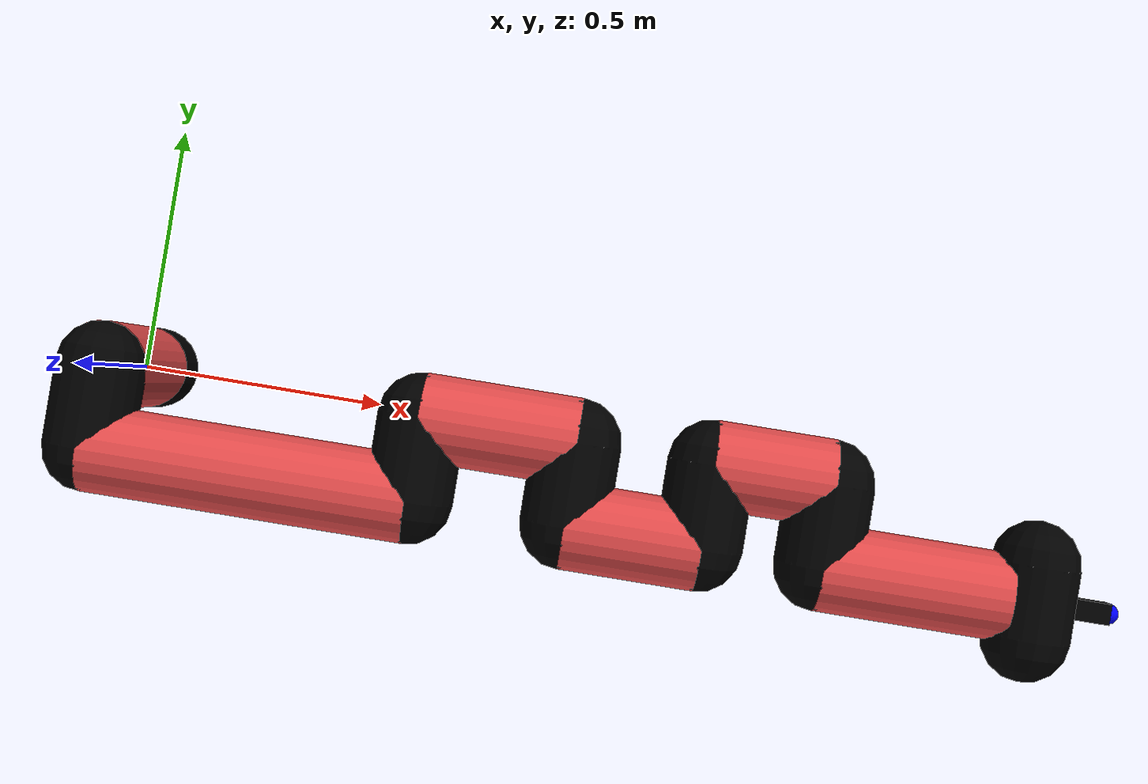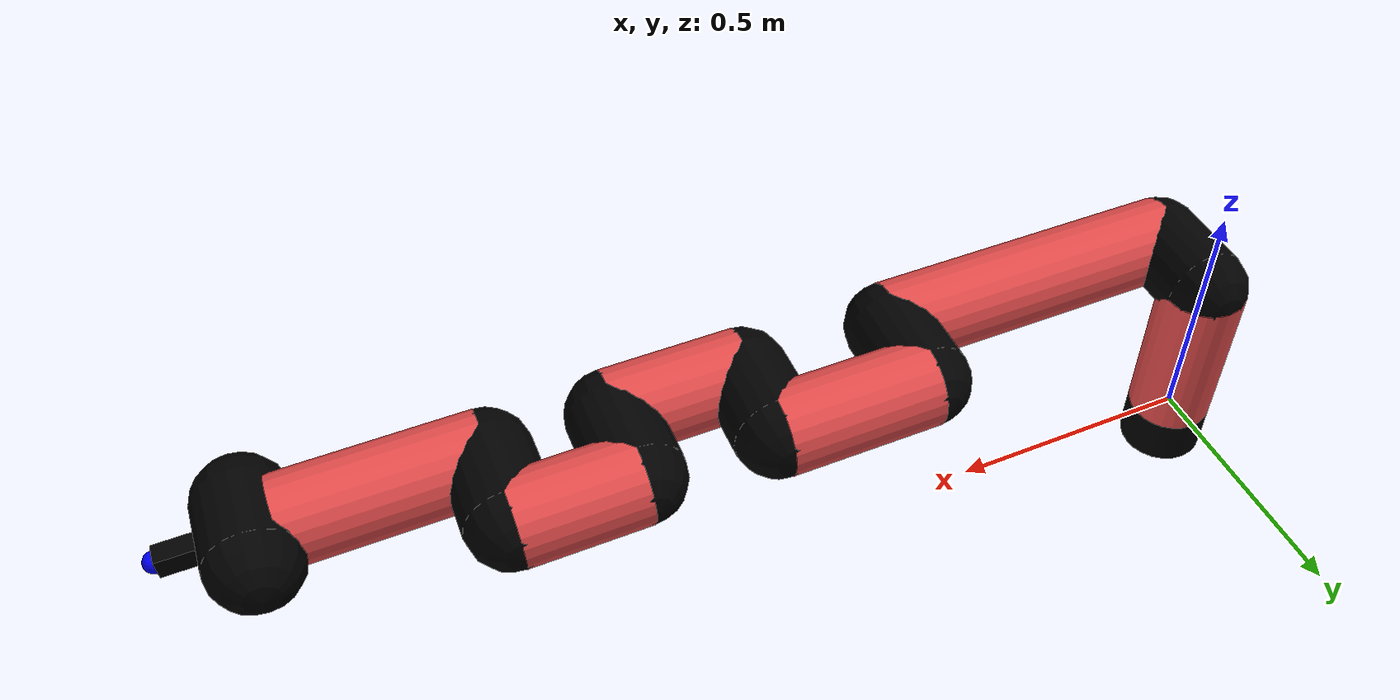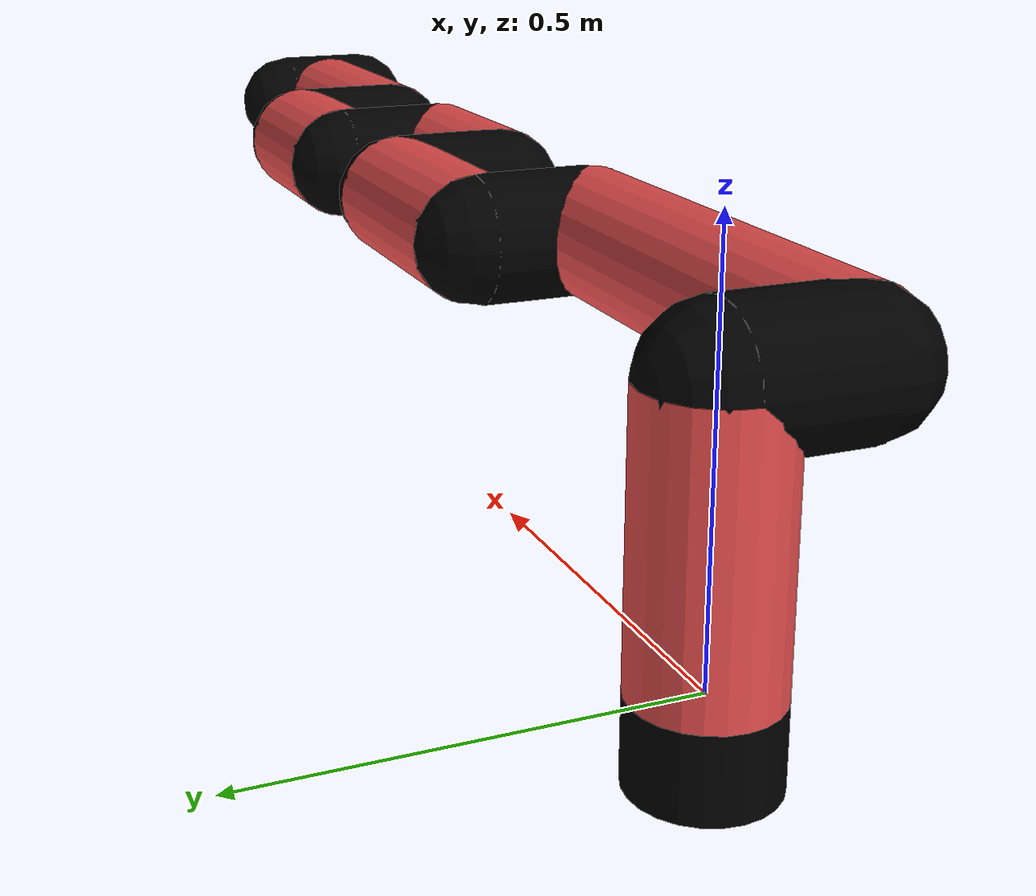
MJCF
<mujoco model="manipulator">
		<compiler angle="degree" coordinate="local" inertiafromgeom="auto" meshdir="meshes/"/>
		<option gravity="0 0 0" integrator="RK4" iterations="30" timestep="0.01"/>

		<default>
		<joint armature="1" limited="true" stiffness="10" damping="15" frictionloss="5.0"/>
		<geom conaffinity="1" condim="3" contype="1" friction=".5 .1 .1" margin="0.002"/>
		<motor ctrllimited="true"/>
		<position ctrllimited="true"/>
		</default>

		<asset>
		<texture builtin="gradient" height="100" rgb1="1.0 1.0 1.0" rgb2="1.0 1.0 1.0" type="skybox" width="100"/>
		<texture builtin="flat" height="32" name="arm_tex" rgb1="0.9 0.3 0.3" type="2d" width="32"/>
		<texture builtin="flat" height="32" name="gripper_tex" rgb1="0.0 0.0 0.0" type="cube" width="32"/>

		<material name="arm_mat" shininess="0.1" specular="0.1" texture="arm_tex"/>
		<material name="gripper_mat" shininess="1" specular="1" texture="gripper_tex"/>
		</asset>

		<worldbody>
		<light cutoff="45" diffuse=".8 .8 .8" dir="0 0.16 -1" directional="false" name="light" pos="0 -2.0 8.0" specular="0.3 0.3 0.3"/>

		<body name="base_link" pos="0 0 -0.1">
		<geom fromto="0 0 0 0 0 0.1" material="arm_mat" name="base_link" rgba="0.0 0.0 0.0 1" size="0.085" type="cylinder"/>
		</body>

		<body name="l1" pos="0 0 0">
<geom fromto="0 0 0 0 0 0.33" material="arm_mat" name="l1" rgba="0.9 0.3 0.3 1" size="0.085" type="cylinder"/>
<geom fromto="0 0 0.33 0 -0.16 0.33" material="arm_mat" name="l1_ex" rgba="0.0 0.0 0.0 1" size="0.085" type="capsule"/>
<joint axis="0 0 1" name="j1" pos="0 0 0" range="-90 90" damping="26.25" frictionloss="12.05"/>

<body name="l2" pos="0 -0.16 0.33">
<geom fromto="0 0 0 0.62 0 0" material="arm_mat" name="l2" rgba="0.9 0.3 0.3 1" size="0.085" type="cylinder"/>
<geom fromto="0.62 0 0 0.62 0.16 0" material="arm_mat" name="l2_ex" rgba="0.0 0.0 0.0 1" size="0.085" type="capsule"/>
<joint axis="0.0 1.0 0.0" name="j2" pos="0 0 0" range="-90 60" damping="28.7" frictionloss="8.85"/>

<body name="l3" pos="0.62 0.16 0">
<geom fromto="0 0 0 0.3 0 0" material="arm_mat" name="l3" rgba="0.9 0.3 0.3 1" size="0.085" type="cylinder"/>
<geom fromto="0.3 0 0 0.3 -0.16 0" material="arm_mat" name="l3_ex" rgba="0.0 0.0 0.0 1" size="0.085" type="capsule"/>
<joint axis="0.0 1.0 0.0" name="j3" pos="0 0 0" range="-30 60" damping="28.29" frictionloss="9.03"/>

<body name="l4" pos="0.3 -0.16 0">
<geom fromto="0 0 0 0.26 0 0" material="arm_mat" name="l4" rgba="0.9 0.3 0.3 1" size="0.085" type="cylinder"/>
<geom fromto="0.26 0 0 0.26 0.16 0" material="arm_mat" name="l4_ex" rgba="0.0 0.0 0.0 1" size="0.085" type="capsule"/>
<joint axis="0.0 1.0 0.0" name="j4" pos="0 0 0" range="-30 60" damping="30.27" frictionloss="9.68"/>

<body name="l5" pos="0.26 0.16 0">
<geom fromto="0 0 0 0.23 0 0" material="arm_mat" name="l5" rgba="0.9 0.3 0.3 1" size="0.085" type="cylinder"/>
<geom fromto="0.23 0 0 0.23 -0.16 0" material="arm_mat" name="l5_ex" rgba="0.0 0.0 0.0 1" size="0.085" type="capsule"/>
<joint axis="0.0 1.0 0.0" name="j5" pos="0 0 0" range="-30 60" damping="24.77" frictionloss="11.41"/>

<body name="l6" pos="0.23 -0.16 0">
<geom fromto="0 0 0 0.36 0 0" material="arm_mat" name="l6" rgba="0.9 0.3 0.3 1" size="0.085" type="cylinder"/>
<joint axis="0.0 1.0 0.0" name="j6" pos="0 0 0" range="-30 60" damping="24.74" frictionloss="12.13"/>

<body name="gripper" pos="0.36 0 0">
<geom fromto="0.05 -0.07 0 0.05 0.07 0" material="gripper_mat" name="gripper" rgba="0.0 0.0 0.0 1" size="0.085" type="capsule"/><joint axis="1 0 0" name="j7" pos="0 0 0" range="-90 90" damping="15" frictionloss="5.0"/><body name="finger" pos="0.1 0 0">
<geom fromto="0 0.0 0 0.1 0.0 0" material="gripper_mat" name="finger" rgba="0.0 0.0 0.0 1" size="0.020 0.06 0.06" type="box"/>
</body>
<site name="current" pos="0.2 0. 0.0" rgba="0. 0. 1.0 1" size="0.02" type="sphere"/>
</body>
</body>
</body>
</body>
</body>
</body>
</body>
</worldbody>
<actuator>
<motor ctrllimited="true" ctrlrange="-1.0 1.0" joint="j1" gear="60.47"/>
<motor ctrllimited="true" ctrlrange="-1.0 1.0" joint="j2" gear="95.32"/>
<motor ctrllimited="true" ctrlrange="-1.0 1.0" joint="j3" gear="76.77"/>
<motor ctrllimited="true" ctrlrange="-1.0 1.0" joint="j4" gear="70.56"/>
<motor ctrllimited="true" ctrlrange="-1.0 1.0" joint="j5" gear="88.34"/>
<motor ctrllimited="true" ctrlrange="-1.0 1.0" joint="j6" gear="95.49"/>
<motor ctrllimited="true" ctrlrange="-1.0 1.0" joint="j7" gear="80"/>
</actuator>
</mujoco>
